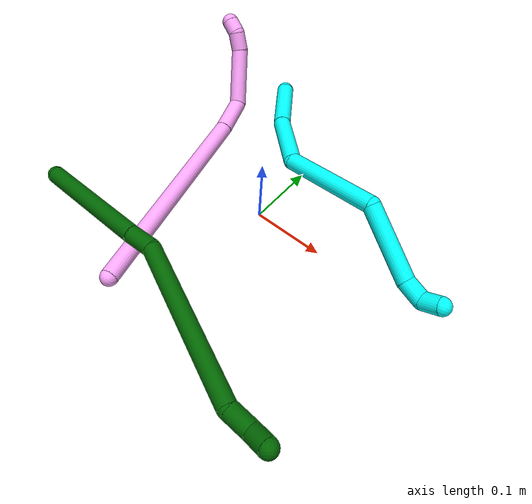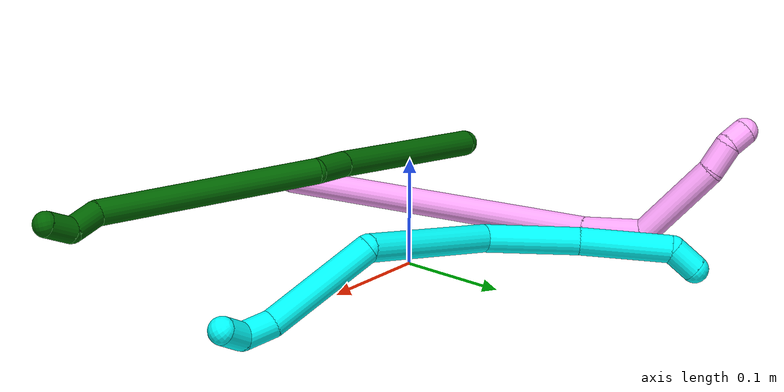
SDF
<sdf version="1.7">
 <world name="default">
  <model name="photoneo_s_sensor">
   <static>1</static>
   <pose>0 0 2 1.57079 1.57079 3.14159</pose>
   <link name="link">
    <inertial><mass>0.1</mass></inertial>
    <sensor name="sensor" type="depth">
     <update_rate>30</update_rate>
     <camera>
      <horizontal_fov>1.22</horizontal_fov>
      <image><width>1920</width><height>1200</height><format>B8G8R8</format></image>
      <clip><near>0.1</near><far>4</far></clip>
      <depth_camera><output>points</output></depth_camera>
     </camera>
     <plugin name="camera_plugin" filename="libgazebo_ros_depth_camera.so">
      <baseline>0.2</baseline>
      <alwaysOn>1</alwaysOn>
      <updateRate>0.0</updateRate>
      <cameraName>camera_ir</cameraName>
      <imageTopicName>/camera/color/image_raw</imageTopicName>
      <cameraInfoTopicName>/camera/color/camera_info</cameraInfoTopicName>
      <depthImageTopicName>/camera/depth/image_raw</depthImageTopicName>
      <depthImageCameraInfoTopicName>/camera/depth/camera_info</depthImageCameraInfoTopicName>
      <pointCloudTopicName>/camera/depth/points</pointCloudTopicName>
      <frameName>fr_optical</frameName>
      <pointCloudCutoff>0.1</pointCloudCutoff>
      <pointCloudCutoffMax>2.0</pointCloudCutoffMax>
      <distortionK1>0</distortionK1>
      <distortionK2>0</distortionK2>
      <distortionK3>0</distortionK3>
      <distortionT1>0</distortionT1>
      <distortionT2>0</distortionT2>
      <CxPrime>0</CxPrime>
      <Cx>0</Cx>
      <Cy>0</Cy>
      <focalLength>0</focalLength>
      <hackBaseline>0</hackBaseline>
     </plugin>
    </sensor>
   </link>
  </model>
  <model name="bin">
   <static>1</static>
   <link name="bottom">
    <collision name="collision-bottom">
     <pose>0 0 -0.01 0 -0 0</pose>
     <geometry><box><size>0.8 0.6 0.02</size></box></geometry>
     <surface>
      <friction><ode><mu>100</mu><mu2>100</mu2></ode></friction>
      <contact><collide_bitmask>65535</collide_bitmask></contact>
     </surface>
    </collision>
   </link>
   <link name="west_wall">
    <collision name="collision-west_wall">
     <pose>-0.41 0 0.1 0 -0 0</pose>
     <geometry><box><size>0.02 0.6 0.2</size></box></geometry>
     <surface>
      <friction><ode><mu>100</mu><mu2>100</mu2></ode></friction>
      <contact><collide_bitmask>65535</collide_bitmask></contact>
     </surface>
    </collision>
   </link>
   <link name="east_wall">
    <collision name="collision-east_wall">
     <pose>0.41 0 0.1 0 -0 0</pose>
     <geometry><box><size>0.02 0.6 0.2</size></box></geometry>
     <surface>
      <friction><ode><mu>100</mu><mu2>100</mu2></ode></friction>
      <contact><collide_bitmask>65535</collide_bitmask></contact>
     </surface>
    </collision>
   </link>
   <link name="south_wall">
    <collision name="collision-south_wall">
     <pose>0 -0.31 0.1 0 -0 0</pose>
     <geometry><box><size>0.8 0.02 0.2</size></box></geometry>
     <surface>
      <friction><ode><mu>100</mu><mu2>100</mu2></ode></friction>
      <contact><collide_bitmask>65535</collide_bitmask></contact>
     </surface>
    </collision>
   </link>
   <link name="north_wall">
    <collision name="collision-north_wall">
     <pose>0 0.31 0.1 0 -0 0</pose>
     <geometry><box><size>0.8 0.02 0.2</size></box></geometry>
     <surface>
      <friction><ode><mu>100</mu><mu2>100</mu2></ode></friction>
      <contact><collide_bitmask>65535</collide_bitmask></contact>
     </surface>
    </collision>
   </link>
  </model>
  <model name="3">
   <static>0</static>
   <link name="3">
    <collision name="collision-cylinder-e_1_1_4">
     <pose>-0.01121 0.007414 -0.001038 -1.70993 -0.982025 1.10244</pose>
     <geometry><cylinder><radius>0.0125</radius><length>0.02696</length></cylinder></geometry>
     <surface>
      <friction><ode><mu>1.16</mu><mu2>1.16</mu2><slip1>0</slip1><slip2>0</slip2></ode></friction>
      <contact><ode><kp>1e+06</kp><kd>1</kd><max_vel>0</max_vel><min_depth>0.001</min_depth></ode></contact>
     </surface>
    </collision>
    <visual name="visual-cylinder-e_1_1_4">
     <pose>-0.01121 0.007414 -0.001038 -1.70993 -0.982025 1.10244</pose>
     <geometry><cylinder><radius>0.0125</radius><length>0.02696</length></cylinder></geometry>
     <material><ambient>0.003922 1 0.996078 1</ambient></material>
    </visual>
    <collision name="collision-cylinder-e_2_4_5">
     <pose>-0.034882 0.017781 0.005745 -0.361118 -0.979867 0.194094</pose>
     <geometry><cylinder><radius>0.0125</radius><length>0.030013</length></cylinder></geometry>
     <surface>
      <friction><ode><mu>1.16</mu><mu2>1.16</mu2><slip1>0</slip1><slip2>0</slip2></ode></friction>
      <contact><ode><kp>1e+06</kp><kd>1</kd><max_vel>0</max_vel><min_depth>0.001</min_depth></ode></contact>
     </surface>
    </collision>
    <visual name="visual-cylinder-e_2_4_5">
     <pose>-0.034882 0.017781 0.005745 -0.361118 -0.979867 0.194094</pose>
     <geometry><cylinder><radius>0.0125</radius><length>0.030013</length></cylinder></geometry>
     <material><ambient>0.003922 1 0.996078 1</ambient></material>
    </visual>
    <collision name="collision-cylinder-e_3_5_6">
     <pose>-0.08203 0.017536 0.052698 0.081578 -0.723594 -0.030888</pose>
     <geometry><cylinder><radius>0.0125</radius><length>0.10478</length></cylinder></geometry>
     <surface>
      <friction><ode><mu>1.16</mu><mu2>1.16</mu2><slip1>0</slip1><slip2>0</slip2></ode></friction>
      <contact><ode><kp>1e+06</kp><kd>1</kd><max_vel>0</max_vel><min_depth>0.001</min_depth></ode></contact>
     </surface>
    </collision>
    <visual name="visual-cylinder-e_3_5_6">
     <pose>-0.08203 0.017536 0.052698 0.081578 -0.723594 -0.030888</pose>
     <geometry><cylinder><radius>0.0125</radius><length>0.10478</length></cylinder></geometry>
     <material><ambient>0.003922 1 0.996078 1</ambient></material>
    </visual>
    <collision name="collision-cylinder-e_4_6_7">
     <pose>-0.179328 0.042746 0.106942 -1.08193 -1.09606 0.702933</pose>
     <geometry><cylinder><radius>0.0125</radius><length>0.140793</length></cylinder></geometry>
     <surface>
      <friction><ode><mu>1.16</mu><mu2>1.16</mu2><slip1>0</slip1><slip2>0</slip2></ode></friction>
      <contact><ode><kp>1e+06</kp><kd>1</kd><max_vel>0</max_vel><min_depth>0.001</min_depth></ode></contact>
     </surface>
    </collision>
    <visual name="visual-cylinder-e_4_6_7">
     <pose>-0.179328 0.042746 0.106942 -1.08193 -1.09606 0.702933</pose>
     <geometry><cylinder><radius>0.0125</radius><length>0.140793</length></cylinder></geometry>
     <material><ambient>0.003922 1 0.996078 1</ambient></material>
    </visual>
    <collision name="collision-cylinder-e_5_7_8">
     <pose>-0.263339 0.096471 0.150003 -0.736 -0.516169 0.202857</pose>
     <geometry><cylinder><radius>0.0125</radius><length>0.086717</length></cylinder></geometry>
     <surface>
      <friction><ode><mu>1.16</mu><mu2>1.16</mu2><slip1>0</slip1><slip2>0</slip2></ode></friction>
      <contact><ode><kp>1e+06</kp><kd>1</kd><max_vel>0</max_vel><min_depth>0.001</min_depth></ode></contact>
     </surface>
    </collision>
    <visual name="visual-cylinder-e_5_7_8">
     <pose>-0.263339 0.096471 0.150003 -0.736 -0.516169 0.202857</pose>
     <geometry><cylinder><radius>0.0125</radius><length>0.086717</length></cylinder></geometry>
     <material><ambient>0.003922 1 0.996078 1</ambient></material>
    </visual>
    <collision name="collision-cylinder-e_6_8_9">
     <pose>-0.29644 0.147421 0.208675 -0.695341 -0.284493 0.103706</pose>
     <geometry><cylinder><radius>0.0125</radius><length>0.083377</length></cylinder></geometry>
     <surface>
      <friction><ode><mu>1.16</mu><mu2>1.16</mu2><slip1>0</slip1><slip2>0</slip2></ode></friction>
      <contact><ode><kp>1e+06</kp><kd>1</kd><max_vel>0</max_vel><min_depth>0.001</min_depth></ode></contact>
     </surface>
    </collision>
    <visual name="visual-cylinder-e_6_8_9">
     <pose>-0.29644 0.147421 0.208675 -0.695341 -0.284493 0.103706</pose>
     <geometry><cylinder><radius>0.0125</radius><length>0.083377</length></cylinder></geometry>
     <material><ambient>0.003922 1 0.996078 1</ambient></material>
    </visual>
    <collision name="collision-cylinder-e_7_9_2">
     <pose>-0.310829 0.18624 0.241863 -1.386 -0.197807 0.164423</pose>
     <geometry><cylinder><radius>0.0125</radius><length>0.02736</length></cylinder></geometry>
     <surface>
      <friction><ode><mu>1.16</mu><mu2>1.16</mu2><slip1>0</slip1><slip2>0</slip2></ode></friction>
      <contact><ode><kp>1e+06</kp><kd>1</kd><max_vel>0</max_vel><min_depth>0.001</min_depth></ode></contact>
     </surface>
    </collision>
    <visual name="visual-cylinder-e_7_9_2">
     <pose>-0.310829 0.18624 0.241863 -1.386 -0.197807 0.164423</pose>
     <geometry><cylinder><radius>0.0125</radius><length>0.02736</length></cylinder></geometry>
     <material><ambient>0.003922 1 0.996078 1</ambient></material>
    </visual>
    <collision name="collision-sphere-2">
     <pose>-0.313517 0.199425 0.244328 0 -0 0</pose>
     <geometry><sphere><radius>0.0125</radius></sphere></geometry>
     <surface>
      <friction><ode><mu>1.16</mu><mu2>1.16</mu2><slip1>0</slip1><slip2>0</slip2></ode></friction>
      <contact><ode><kp>1e+06</kp><kd>1</kd><max_vel>0</max_vel><min_depth>0.001</min_depth></ode></contact>
     </surface>
    </collision>
    <visual name="visual-sphere-2">
     <pose>-0.313517 0.199425 0.244328 0 -0 0</pose>
     <geometry><sphere><radius>0.0125</radius></sphere></geometry>
     <material><ambient>0.003922 1 0.996078 1</ambient></material>
    </visual>
    <collision name="collision-sphere-9">
     <pose>-0.30814 0.173055 0.239398 0 -0 0</pose>
     <geometry><sphere><radius>0.0125</radius></sphere></geometry>
     <surface>
      <friction><ode><mu>1.16</mu><mu2>1.16</mu2><slip1>0</slip1><slip2>0</slip2></ode></friction>
      <contact><ode><kp>1e+06</kp><kd>1</kd><max_vel>0</max_vel><min_depth>0.001</min_depth></ode></contact>
     </surface>
    </collision>
    <visual name="visual-sphere-9">
     <pose>-0.30814 0.173055 0.239398 0 -0 0</pose>
     <geometry><sphere><radius>0.0125</radius></sphere></geometry>
     <material><ambient>0.003922 1 0.996078 1</ambient></material>
    </visual>
    <collision name="collision-sphere-4">
     <pose>-0.02242 0.014827 -0.002076 0 -0 0</pose>
     <geometry><sphere><radius>0.0125</radius></sphere></geometry>
     <surface>
      <friction><ode><mu>1.16</mu><mu2>1.16</mu2><slip1>0</slip1><slip2>0</slip2></ode></friction>
      <contact><ode><kp>1e+06</kp><kd>1</kd><max_vel>0</max_vel><min_depth>0.001</min_depth></ode></contact>
     </surface>
    </collision>
    <visual name="visual-sphere-4">
     <pose>-0.02242 0.014827 -0.002076 0 -0 0</pose>
     <geometry><sphere><radius>0.0125</radius></sphere></geometry>
     <material><ambient>0.003922 1 0.996078 1</ambient></material>
    </visual>
    <collision name="collision-sphere-1">
     <geometry><sphere><radius>0.0125</radius></sphere></geometry>
     <surface>
      <friction><ode><mu>1.16</mu><mu2>1.16</mu2><slip1>0</slip1><slip2>0</slip2></ode></friction>
      <contact><ode><kp>1e+06</kp><kd>1</kd><max_vel>0</max_vel><min_depth>0.001</min_depth></ode></contact>
     </surface>
    </collision>
    <visual name="visual-sphere-1">
     <geometry><sphere><radius>0.0125</radius></sphere></geometry>
     <material><ambient>0.003922 1 0.996078 1</ambient></material>
    </visual>
    <collision name="collision-sphere-8">
     <pose>-0.284739 0.121787 0.177952 0 -0 0</pose>
     <geometry><sphere><radius>0.0125</radius></sphere></geometry>
     <surface>
      <friction><ode><mu>1.16</mu><mu2>1.16</mu2><slip1>0</slip1><slip2>0</slip2></ode></friction>
      <contact><ode><kp>1e+06</kp><kd>1</kd><max_vel>0</max_vel><min_depth>0.001</min_depth></ode></contact>
     </surface>
    </collision>
    <visual name="visual-sphere-8">
     <pose>-0.284739 0.121787 0.177952 0 -0 0</pose>
     <geometry><sphere><radius>0.0125</radius></sphere></geometry>
     <material><ambient>0.003922 1 0.996078 1</ambient></material>
    </visual>
    <collision name="collision-sphere-5">
     <pose>-0.047344 0.020735 0.013566 0 -0 0</pose>
     <geometry><sphere><radius>0.0125</radius></sphere></geometry>
     <surface>
      <friction><ode><mu>1.16</mu><mu2>1.16</mu2><slip1>0</slip1><slip2>0</slip2></ode></friction>
      <contact><ode><kp>1e+06</kp><kd>1</kd><max_vel>0</max_vel><min_depth>0.001</min_depth></ode></contact>
     </surface>
    </collision>
    <visual name="visual-sphere-5">
     <pose>-0.047344 0.020735 0.013566 0 -0 0</pose>
     <geometry><sphere><radius>0.0125</radius></sphere></geometry>
     <material><ambient>0.003922 1 0.996078 1</ambient></material>
    </visual>
    <collision name="collision-sphere-6">
     <pose>-0.116716 0.014336 0.09183 0 -0 0</pose>
     <geometry><sphere><radius>0.0125</radius></sphere></geometry>
     <surface>
      <friction><ode><mu>1.16</mu><mu2>1.16</mu2><slip1>0</slip1><slip2>0</slip2></ode></friction>
      <contact><ode><kp>1e+06</kp><kd>1</kd><max_vel>0</max_vel><min_depth>0.001</min_depth></ode></contact>
     </surface>
    </collision>
    <visual name="visual-sphere-6">
     <pose>-0.116716 0.014336 0.09183 0 -0 0</pose>
     <geometry><sphere><radius>0.0125</radius></sphere></geometry>
     <material><ambient>0.003922 1 0.996078 1</ambient></material>
    </visual>
    <collision name="collision-sphere-7">
     <pose>-0.241939 0.071156 0.122054 0 -0 0</pose>
     <geometry><sphere><radius>0.0125</radius></sphere></geometry>
     <surface>
      <friction><ode><mu>1.16</mu><mu2>1.16</mu2><slip1>0</slip1><slip2>0</slip2></ode></friction>
      <contact><ode><kp>1e+06</kp><kd>1</kd><max_vel>0</max_vel><min_depth>0.001</min_depth></ode></contact>
     </surface>
    </collision>
    <visual name="visual-sphere-7">
     <pose>-0.241939 0.071156 0.122054 0 -0 0</pose>
     <geometry><sphere><radius>0.0125</radius></sphere></geometry>
     <material><ambient>0.003922 1 0.996078 1</ambient></material>
    </visual>
    <inertial>
     <pose>-0.182498 0.068684 0.115494 0 -0 0</pose>
     <mass>0.5</mass>
     <inertia>
      <ixx>0.000322</ixx>
      <ixy>0</ixy>
      <ixz>0</ixz>
      <iyy>0.000499</iyy>
      <iyz>0</iyz>
      <izz>0.000185</izz>
     </inertia>
    </inertial>
   </link>
   <pose>0.266484 0.019736 0.024447 -0.933178 0.008964 0.309445</pose>
  </model>
  <model name="4">
   <static>0</static>
   <link name="4">
    <collision name="collision-cylinder-e_1_1_4">
     <pose>-0.032087 0.150098 0.016807 -1.45929 -0.209333 0.187338</pose>
     <geometry><cylinder><radius>0.0125</radius><length>0.308814</length></cylinder></geometry>
     <surface>
      <friction><ode><mu>1.16</mu><mu2>1.16</mu2><slip1>0</slip1><slip2>0</slip2></ode></friction>
      <contact><ode><kp>1e+06</kp><kd>1</kd><max_vel>0</max_vel><min_depth>0.001</min_depth></ode></contact>
     </surface>
    </collision>
    <visual name="visual-cylinder-e_1_1_4">
     <pose>-0.032087 0.150098 0.016807 -1.45929 -0.209333 0.187338</pose>
     <geometry><cylinder><radius>0.0125</radius><length>0.308814</length></cylinder></geometry>
     <material><ambient>1 0.65098 0.996078 1</ambient></material>
    </visual>
    <collision name="collision-cylinder-e_2_4_5">
     <pose>-0.066775 0.328586 0.036159 -1.48138 -0.09102 0.083234</pose>
     <geometry><cylinder><radius>0.0125</radius><length>0.057245</length></cylinder></geometry>
     <surface>
      <friction><ode><mu>1.16</mu><mu2>1.16</mu2><slip1>0</slip1><slip2>0</slip2></ode></friction>
      <contact><ode><kp>1e+06</kp><kd>1</kd><max_vel>0</max_vel><min_depth>0.001</min_depth></ode></contact>
     </surface>
    </collision>
    <visual name="visual-cylinder-e_2_4_5">
     <pose>-0.066775 0.328586 0.036159 -1.48138 -0.09102 0.083234</pose>
     <geometry><cylinder><radius>0.0125</radius><length>0.057245</length></cylinder></geometry>
     <material><ambient>1 0.65098 0.996078 1</ambient></material>
    </visual>
    <collision name="collision-cylinder-e_3_5_6">
     <pose>-0.046512 0.390675 0.026798 -1.91043 0.56914 -0.784317</pose>
     <geometry><cylinder><radius>0.0125</radius><length>0.084857</length></cylinder></geometry>
     <surface>
      <friction><ode><mu>1.16</mu><mu2>1.16</mu2><slip1>0</slip1><slip2>0</slip2></ode></friction>
      <contact><ode><kp>1e+06</kp><kd>1</kd><max_vel>0</max_vel><min_depth>0.001</min_depth></ode></contact>
     </surface>
    </collision>
    <visual name="visual-cylinder-e_3_5_6">
     <pose>-0.046512 0.390675 0.026798 -1.91043 0.56914 -0.784317</pose>
     <geometry><cylinder><radius>0.0125</radius><length>0.084857</length></cylinder></geometry>
     <material><ambient>1 0.65098 0.996078 1</ambient></material>
    </visual>
    <collision name="collision-cylinder-e_4_6_7">
     <pose>-0.013136 0.432853 0.011018 -1.9993 0.845246 -1.22127</pose>
     <geometry><cylinder><radius>0.0125</radius><length>0.028097</length></cylinder></geometry>
     <surface>
      <friction><ode><mu>1.16</mu><mu2>1.16</mu2><slip1>0</slip1><slip2>0</slip2></ode></friction>
      <contact><ode><kp>1e+06</kp><kd>1</kd><max_vel>0</max_vel><min_depth>0.001</min_depth></ode></contact>
     </surface>
    </collision>
    <visual name="visual-cylinder-e_4_6_7">
     <pose>-0.013136 0.432853 0.011018 -1.9993 0.845246 -1.22127</pose>
     <geometry><cylinder><radius>0.0125</radius><length>0.028097</length></cylinder></geometry>
     <material><ambient>1 0.65098 0.996078 1</ambient></material>
    </visual>
    <collision name="collision-cylinder-e_5_7_2">
     <pose>0.005409 0.447755 0.009216 -1.25886 0.872189 -0.654355</pose>
     <geometry><cylinder><radius>0.0125</radius><length>0.020987</length></cylinder></geometry>
     <surface>
      <friction><ode><mu>1.16</mu><mu2>1.16</mu2><slip1>0</slip1><slip2>0</slip2></ode></friction>
      <contact><ode><kp>1e+06</kp><kd>1</kd><max_vel>0</max_vel><min_depth>0.001</min_depth></ode></contact>
     </surface>
    </collision>
    <visual name="visual-cylinder-e_5_7_2">
     <pose>0.005409 0.447755 0.009216 -1.25886 0.872189 -0.654355</pose>
     <geometry><cylinder><radius>0.0125</radius><length>0.020987</length></cylinder></geometry>
     <material><ambient>1 0.65098 0.996078 1</ambient></material>
    </visual>
    <collision name="collision-sphere-2">
     <pose>0.013444 0.454178 0.011287 0 -0 0</pose>
     <geometry><sphere><radius>0.0125</radius></sphere></geometry>
     <surface>
      <friction><ode><mu>1.16</mu><mu2>1.16</mu2><slip1>0</slip1><slip2>0</slip2></ode></friction>
      <contact><ode><kp>1e+06</kp><kd>1</kd><max_vel>0</max_vel><min_depth>0.001</min_depth></ode></contact>
     </surface>
    </collision>
    <visual name="visual-sphere-2">
     <pose>0.013444 0.454178 0.011287 0 -0 0</pose>
     <geometry><sphere><radius>0.0125</radius></sphere></geometry>
     <material><ambient>1 0.65098 0.996078 1</ambient></material>
    </visual>
    <collision name="collision-sphere-7">
     <pose>-0.002626 0.441332 0.007145 0 -0 0</pose>
     <geometry><sphere><radius>0.0125</radius></sphere></geometry>
     <surface>
      <friction><ode><mu>1.16</mu><mu2>1.16</mu2><slip1>0</slip1><slip2>0</slip2></ode></friction>
      <contact><ode><kp>1e+06</kp><kd>1</kd><max_vel>0</max_vel><min_depth>0.001</min_depth></ode></contact>
     </surface>
    </collision>
    <visual name="visual-sphere-7">
     <pose>-0.002626 0.441332 0.007145 0 -0 0</pose>
     <geometry><sphere><radius>0.0125</radius></sphere></geometry>
     <material><ambient>1 0.65098 0.996078 1</ambient></material>
    </visual>
    <collision name="collision-sphere-6">
     <pose>-0.023647 0.424374 0.014891 0 -0 0</pose>
     <geometry><sphere><radius>0.0125</radius></sphere></geometry>
     <surface>
      <friction><ode><mu>1.16</mu><mu2>1.16</mu2><slip1>0</slip1><slip2>0</slip2></ode></friction>
      <contact><ode><kp>1e+06</kp><kd>1</kd><max_vel>0</max_vel><min_depth>0.001</min_depth></ode></contact>
     </surface>
    </collision>
    <visual name="visual-sphere-6">
     <pose>-0.023647 0.424374 0.014891 0 -0 0</pose>
     <geometry><sphere><radius>0.0125</radius></sphere></geometry>
     <material><ambient>1 0.65098 0.996078 1</ambient></material>
    </visual>
    <collision name="collision-sphere-5">
     <pose>-0.069377 0.356976 0.038705 0 -0 0</pose>
     <geometry><sphere><radius>0.0125</radius></sphere></geometry>
     <surface>
      <friction><ode><mu>1.16</mu><mu2>1.16</mu2><slip1>0</slip1><slip2>0</slip2></ode></friction>
      <contact><ode><kp>1e+06</kp><kd>1</kd><max_vel>0</max_vel><min_depth>0.001</min_depth></ode></contact>
     </surface>
    </collision>
    <visual name="visual-sphere-5">
     <pose>-0.069377 0.356976 0.038705 0 -0 0</pose>
     <geometry><sphere><radius>0.0125</radius></sphere></geometry>
     <material><ambient>1 0.65098 0.996078 1</ambient></material>
    </visual>
    <collision name="collision-sphere-1">
     <geometry><sphere><radius>0.0125</radius></sphere></geometry>
     <surface>
      <friction><ode><mu>1.16</mu><mu2>1.16</mu2><slip1>0</slip1><slip2>0</slip2></ode></friction>
      <contact><ode><kp>1e+06</kp><kd>1</kd><max_vel>0</max_vel><min_depth>0.001</min_depth></ode></contact>
     </surface>
    </collision>
    <visual name="visual-sphere-1">
     <geometry><sphere><radius>0.0125</radius></sphere></geometry>
     <material><ambient>1 0.65098 0.996078 1</ambient></material>
    </visual>
    <collision name="collision-sphere-4">
     <pose>-0.064174 0.300196 0.033614 0 -0 0</pose>
     <geometry><sphere><radius>0.0125</radius></sphere></geometry>
     <surface>
      <friction><ode><mu>1.16</mu><mu2>1.16</mu2><slip1>0</slip1><slip2>0</slip2></ode></friction>
      <contact><ode><kp>1e+06</kp><kd>1</kd><max_vel>0</max_vel><min_depth>0.001</min_depth></ode></contact>
     </surface>
    </collision>
    <visual name="visual-sphere-4">
     <pose>-0.064174 0.300196 0.033614 0 -0 0</pose>
     <geometry><sphere><radius>0.0125</radius></sphere></geometry>
     <material><ambient>1 0.65098 0.996078 1</ambient></material>
    </visual>
    <inertial>
     <pose>-0.035868 0.239746 0.020074 0 -0 0</pose>
     <mass>0.5</mass>
     <inertia>
      <ixx>0.002839</ixx>
      <ixy>0</ixy>
      <ixz>0</ixz>
      <iyy>0.000827</iyy>
      <iyz>0</iyz>
      <izz>-0.001979</izz>
     </inertia>
    </inertial>
   </link>
   <pose>-0.075169 -0.211135 0.012116 2.85753 -0.681913 -2.63849</pose>
  </model>
  <model name="6">
   <static>0</static>
   <link name="6">
    <collision name="collision-cylinder-e_1_1_4">
     <pose>0.049488 -0.046794 0.055959 0.696441 0.596091 0.222115</pose>
     <geometry><cylinder><radius>0.0125</radius><length>0.176297</length></cylinder></geometry>
     <surface>
      <friction><ode><mu>1.16</mu><mu2>1.16</mu2><slip1>0</slip1><slip2>0</slip2></ode></friction>
      <contact><ode><kp>1e+06</kp><kd>1</kd><max_vel>0</max_vel><min_depth>0.001</min_depth></ode></contact>
     </surface>
    </collision>
    <visual name="visual-cylinder-e_1_1_4">
     <pose>0.049488 -0.046794 0.055959 0.696441 0.596091 0.222115</pose>
     <geometry><cylinder><radius>0.0125</radius><length>0.176297</length></cylinder></geometry>
     <material><ambient>0 0.392157 0.003922 1</ambient></material>
    </visual>
    <collision name="collision-cylinder-e_2_4_5">
     <pose>0.109087 -0.104809 0.123146 0.785102 0.567204 0.24019</pose>
     <geometry><cylinder><radius>0.0125</radius><length>0.03764</length></cylinder></geometry>
     <surface>
      <friction><ode><mu>1.16</mu><mu2>1.16</mu2><slip1>0</slip1><slip2>0</slip2></ode></friction>
      <contact><ode><kp>1e+06</kp><kd>1</kd><max_vel>0</max_vel><min_depth>0.001</min_depth></ode></contact>
     </surface>
    </collision>
    <visual name="visual-cylinder-e_2_4_5">
     <pose>0.109087 -0.104809 0.123146 0.785102 0.567204 0.24019</pose>
     <geometry><cylinder><radius>0.0125</radius><length>0.03764</length></cylinder></geometry>
     <material><ambient>0 0.392157 0.003922 1</ambient></material>
    </visual>
    <collision name="collision-cylinder-e_3_5_6">
     <pose>0.159935 -0.151985 0.231999 0.352882 0.373205 0.067299</pose>
     <geometry><cylinder><radius>0.0125</radius><length>0.223454</length></cylinder></geometry>
     <surface>
      <friction><ode><mu>1.16</mu><mu2>1.16</mu2><slip1>0</slip1><slip2>0</slip2></ode></friction>
      <contact><ode><kp>1e+06</kp><kd>1</kd><max_vel>0</max_vel><min_depth>0.001</min_depth></ode></contact>
     </surface>
    </collision>
    <visual name="visual-cylinder-e_3_5_6">
     <pose>0.159935 -0.151985 0.231999 0.352882 0.373205 0.067299</pose>
     <geometry><cylinder><radius>0.0125</radius><length>0.223454</length></cylinder></geometry>
     <material><ambient>0 0.392157 0.003922 1</ambient></material>
    </visual>
    <collision name="collision-cylinder-e_4_6_7">
     <pose>0.205059 -0.199944 0.340495 0.834884 0.264609 0.117909</pose>
     <geometry><cylinder><radius>0.0125</radius><length>0.033557</length></cylinder></geometry>
     <surface>
      <friction><ode><mu>1.16</mu><mu2>1.16</mu2><slip1>0</slip1><slip2>0</slip2></ode></friction>
      <contact><ode><kp>1e+06</kp><kd>1</kd><max_vel>0</max_vel><min_depth>0.001</min_depth></ode></contact>
     </surface>
    </collision>
    <visual name="visual-cylinder-e_4_6_7">
     <pose>0.205059 -0.199944 0.340495 0.834884 0.264609 0.117909</pose>
     <geometry><cylinder><radius>0.0125</radius><length>0.033557</length></cylinder></geometry>
     <material><ambient>0 0.392157 0.003922 1</ambient></material>
    </visual>
    <collision name="collision-cylinder-e_5_7_2">
     <pose>0.220513 -0.215864 0.359921 0.429332 0.866132 0.200924</pose>
     <geometry><cylinder><radius>0.0125</radius><length>0.029051</length></cylinder></geometry>
     <surface>
      <friction><ode><mu>1.16</mu><mu2>1.16</mu2><slip1>0</slip1><slip2>0</slip2></ode></friction>
      <contact><ode><kp>1e+06</kp><kd>1</kd><max_vel>0</max_vel><min_depth>0.001</min_depth></ode></contact>
     </surface>
    </collision>
    <visual name="visual-cylinder-e_5_7_2">
     <pose>0.220513 -0.215864 0.359921 0.429332 0.866132 0.200924</pose>
     <geometry><cylinder><radius>0.0125</radius><length>0.029051</length></cylinder></geometry>
     <material><ambient>0 0.392157 0.003922 1</ambient></material>
    </visual>
    <collision name="collision-sphere-2">
     <pose>0.231579 -0.219781 0.368476 0 -0 0</pose>
     <geometry><sphere><radius>0.0125</radius></sphere></geometry>
     <surface>
      <friction><ode><mu>1.16</mu><mu2>1.16</mu2><slip1>0</slip1><slip2>0</slip2></ode></friction>
      <contact><ode><kp>1e+06</kp><kd>1</kd><max_vel>0</max_vel><min_depth>0.001</min_depth></ode></contact>
     </surface>
    </collision>
    <visual name="visual-sphere-2">
     <pose>0.231579 -0.219781 0.368476 0 -0 0</pose>
     <geometry><sphere><radius>0.0125</radius></sphere></geometry>
     <material><ambient>0 0.392157 0.003922 1</ambient></material>
    </visual>
    <collision name="collision-sphere-7">
     <pose>0.209447 -0.211948 0.351365 0 -0 0</pose>
     <geometry><sphere><radius>0.0125</radius></sphere></geometry>
     <surface>
      <friction><ode><mu>1.16</mu><mu2>1.16</mu2><slip1>0</slip1><slip2>0</slip2></ode></friction>
      <contact><ode><kp>1e+06</kp><kd>1</kd><max_vel>0</max_vel><min_depth>0.001</min_depth></ode></contact>
     </surface>
    </collision>
    <visual name="visual-sphere-7">
     <pose>0.209447 -0.211948 0.351365 0 -0 0</pose>
     <geometry><sphere><radius>0.0125</radius></sphere></geometry>
     <material><ambient>0 0.392157 0.003922 1</ambient></material>
    </visual>
    <collision name="collision-sphere-6">
     <pose>0.200671 -0.187941 0.329624 0 -0 0</pose>
     <geometry><sphere><radius>0.0125</radius></sphere></geometry>
     <surface>
      <friction><ode><mu>1.16</mu><mu2>1.16</mu2><slip1>0</slip1><slip2>0</slip2></ode></friction>
      <contact><ode><kp>1e+06</kp><kd>1</kd><max_vel>0</max_vel><min_depth>0.001</min_depth></ode></contact>
     </surface>
    </collision>
    <visual name="visual-sphere-6">
     <pose>0.200671 -0.187941 0.329624 0 -0 0</pose>
     <geometry><sphere><radius>0.0125</radius></sphere></geometry>
     <material><ambient>0 0.392157 0.003922 1</ambient></material>
    </visual>
    <collision name="collision-sphere-5">
     <pose>0.119199 -0.11603 0.134373 0 -0 0</pose>
     <geometry><sphere><radius>0.0125</radius></sphere></geometry>
     <surface>
      <friction><ode><mu>1.16</mu><mu2>1.16</mu2><slip1>0</slip1><slip2>0</slip2></ode></friction>
      <contact><ode><kp>1e+06</kp><kd>1</kd><max_vel>0</max_vel><min_depth>0.001</min_depth></ode></contact>
     </surface>
    </collision>
    <visual name="visual-sphere-5">
     <pose>0.119199 -0.11603 0.134373 0 -0 0</pose>
     <geometry><sphere><radius>0.0125</radius></sphere></geometry>
     <material><ambient>0 0.392157 0.003922 1</ambient></material>
    </visual>
    <collision name="collision-sphere-1">
     <geometry><sphere><radius>0.0125</radius></sphere></geometry>
     <surface>
      <friction><ode><mu>1.16</mu><mu2>1.16</mu2><slip1>0</slip1><slip2>0</slip2></ode></friction>
      <contact><ode><kp>1e+06</kp><kd>1</kd><max_vel>0</max_vel><min_depth>0.001</min_depth></ode></contact>
     </surface>
    </collision>
    <visual name="visual-sphere-1">
     <geometry><sphere><radius>0.0125</radius></sphere></geometry>
     <material><ambient>0 0.392157 0.003922 1</ambient></material>
    </visual>
    <collision name="collision-sphere-4">
     <pose>0.098975 -0.093589 0.111918 0 -0 0</pose>
     <geometry><sphere><radius>0.0125</radius></sphere></geometry>
     <surface>
      <friction><ode><mu>1.16</mu><mu2>1.16</mu2><slip1>0</slip1><slip2>0</slip2></ode></friction>
      <contact><ode><kp>1e+06</kp><kd>1</kd><max_vel>0</max_vel><min_depth>0.001</min_depth></ode></contact>
     </surface>
    </collision>
    <visual name="visual-sphere-4">
     <pose>0.098975 -0.093589 0.111918 0 -0 0</pose>
     <geometry><sphere><radius>0.0125</radius></sphere></geometry>
     <material><ambient>0 0.392157 0.003922 1</ambient></material>
    </visual>
    <inertial>
     <pose>0.123712 -0.118274 0.176448 0 -0 0</pose>
     <mass>0.5</mass>
     <inertia>
      <ixx>0.001421</ixx>
      <ixy>0</ixy>
      <ixz>0</ixz>
      <iyy>0.001409</iyy>
      <iyz>0</iyz>
      <izz>-2.5e-05</izz>
     </inertia>
    </inertial>
   </link>
   <pose>-0.262145 -0.146006 0.015933 2.11907 -1.07438 0.207477</pose>
  </model>
 </world>
</sdf>
